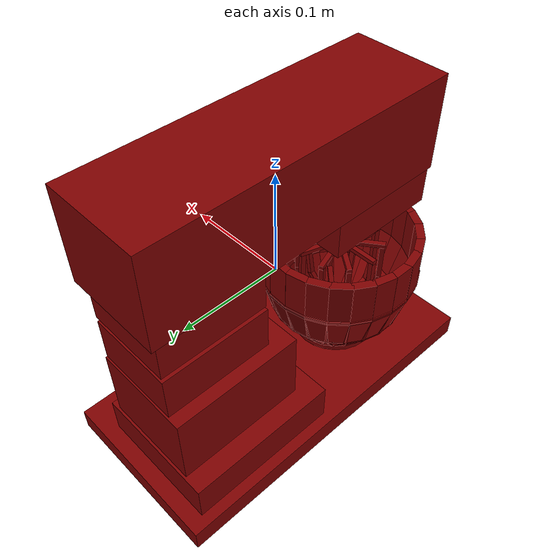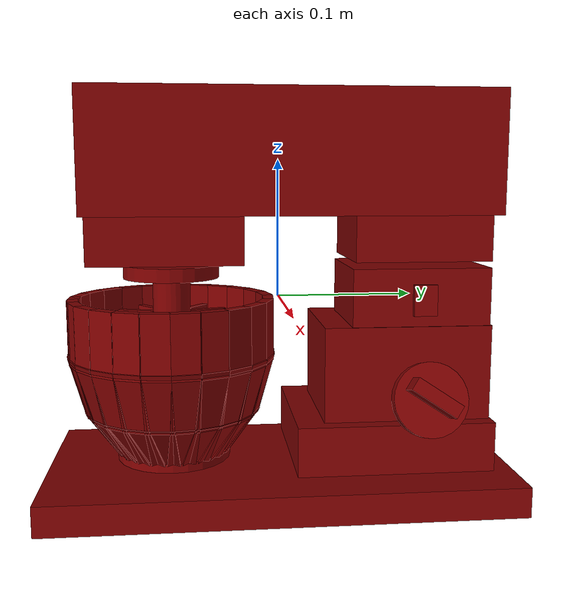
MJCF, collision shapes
<?xml version='1.0' encoding='UTF-8'?>
<mujoco model="model">
  <compiler angle="radian"/>
  <asset>
    <mesh file="visuals/Blender001.obj" name="Blender001_vis"/>
    <mesh file="visuals/Body001.obj" name="Body001_vis"/>
    <mesh file="visuals/Button001.obj" name="Button001_vis"/>
    <mesh file="visuals/Container001.obj" name="Container001_vis"/>
    <mesh file="visuals/Knob001.obj" name="Knob001_vis"/>
    <mesh file="visuals/Lid001.obj" name="Lid001_vis"/>
    <texture file="visuals/T_BC001.png" name="Body001_material" type="2d"/>
    <material name="Body001_material" rgba="1 1 1 1.0" texture="Body001_material" shininess="0.2" specular="0.6"/>
    <texture file="visuals/T_BC001.png" name="Button001_material" type="2d"/>
    <material name="Button001_material" rgba="1 1 1 1.0" texture="Button001_material" shininess="0.5" specular="0.3103448502657381"/>
    <texture file="visuals/T_BC001.png" name="Container001_material" type="2d"/>
    <material name="Container001_material" rgba="1 1 1 1.0" texture="Container001_material" shininess="0.1" specular="4"/>
    <texture file="visuals/T_BC001.png" name="Knob001_material" type="2d"/>
    <material name="Knob001_material" rgba="1 1 1 1.0" texture="Knob001_material" shininess="0.5" specular="0.3103448502657381"/>
    <texture file="visuals/T_BC001.png" name="Lid001_material" type="2d"/>
    <material name="Lid001_material" rgba="1 1 1 1.0" texture="Lid001_material" shininess="0.5" specular="0.3103448502657381"/>
    <texture file="visuals/T_BC001.png" name="Blender001_material" type="2d"/>
    <material name="Blender001_material" rgba="1 1 1 1.0" texture="Blender001_material" shininess="0.1" specular="4"/>
  </asset>
  <default>
    <default class="visual">
      <geom conaffinity="0" contype="0" group="1" type="mesh"/>
    </default>
    <default class="collision">
      <geom group="0" rgba="0.5 0 0 0.5"/>
    </default>
    <default class="spawn">
      <geom group="0" rgba="1 1 1 0.5" contype="0" conaffinity="0"/>
      <site group="0" rgba="1 1 1 0.5"/>
    </default>
    <default class="region">
      <geom group="1" conaffinity="0" contype="0" rgba="0 1 0 0"/>
    </default>
  </default>
  <worldbody>
    <body>
      <body name="object">
        <geom mesh="Body001_vis" type="mesh" solimp="0.998 0.998 0.001" solref="0.001 1" density="100" friction="0.95 0.3 0.1" class="visual" material="Body001_material"/>
        <geom class="collision" type="box" pos="-0.002631 -0.000264 -0.137597" size="0.1709049642086029 0.08239562809467316 0.010993502102792263" quat="0.7071068286895752 0.0 0.0 0.7071067094802856"/>
        <geom class="collision" type="box" pos="-0.015024 0.083063 -0.108414" size="0.07269035279750824 0.059690117835998535 0.018418438732624054" quat="0.7071068286895752 0.0 0.0 0.7071067094802856"/>
        <geom class="collision" type="box" pos="-0.010581 0.092109 -0.054314" size="0.06146044284105301 0.04611232131719589 0.03501715511083603" quat="0.7071068286895752 0.0 0.0 0.7071067094802856"/>
        <geom class="collision" type="box" pos="-0.004484 0.101290 0.001898" size="0.050663091242313385 0.040072131901979446 0.02101229503750801" quat="0.7071068286895752 0.0 0.0 0.7071067094802856"/>
        <body name="Button001">
          <joint axis="-1.0 0.0 0.0" pos="0.040818 0.101718 0.000606" limited="true" name="Button001_joint" range="0.0 0.001" type="slide" damping="1" frictionloss="1" armature=".01" stiffness="0.05"/>
          <geom mesh="Button001_vis" type="mesh" solimp="0.998 0.998 0.001" solref="0.001 1" density="100" friction="0.95 0.3 0.1" class="visual" material="Button001_material"/>
          <geom class="collision" type="box" pos="0.041062 0.101706 0.000800" size="0.008473409339785576 0.001839453587308526 0.011159100569784641" quat="0.7069293260574341 -0.015838947147130966 -0.015838949009776115 0.7069293856620789"/>
        </body>
        <body name="Container001">
          <joint axis="0.0 0.0 1.0" pos="-0.081928 0.000225 -0.061167" limited="true" name="Container001_joint" range="0.0 0.05" type="slide" damping="1" frictionloss="1" armature=".01" stiffness="0.05"/>
          <geom mesh="Container001_vis" type="mesh" solimp="0.998 0.998 0.001" solref="0.001 1" density="100" friction="0.95 0.3 0.1" class="visual" material="Container001_material"/>
          <geom class="collision" type="cylinder" pos="-0.003049 -0.079103 -0.116667" size="0.04229027032852173 0.005284236278384924" quat="0.7071068286895752 0.0 0.0 0.7071067094802856"/>
          <geom class="collision" type="box" pos="-0.003049 -0.150660 -0.023729" size="0.003976119216531515 0.010349423624575138 0.02300979197025299" quat="5.338507946817117e-08 0.7071068286895752 0.7071067094802856 5.338507591545749e-08"/>
          <geom class="collision" type="box" pos="-0.003049 -0.145408 -0.063160" size="0.003976119216531515 0.010349423624575138 0.02300979010760784" quat="0.0975811630487442 -0.7003413438796997 -0.7003412246704102 -0.09758107364177704"/>
          <geom class="collision" type="box" pos="-0.003049 -0.127364 -0.100013" size="0.003976119216531515 0.010349423624575138 0.02300979197025299" quat="0.21898102760314941 -0.6723447442054749 -0.6723445653915405 -0.21898098289966583"/>
          <geom class="collision" type="box" pos="-0.021242 -0.148308 -0.023729" size="0.003976119216531515 0.010349424555897713 0.02300979197025299" quat="5.978750294843849e-08 0.7919096946716309 0.6106382608413696 4.6101927608788174e-08"/>
          <geom class="collision" type="box" pos="-0.019907 -0.143230 -0.063160" size="0.003976119216531515 0.010349423624575138 0.02300979197025299" quat="0.08426856249570847 -0.7843326330184937 -0.6047959327697754 -0.10928399115800858"/>
          <geom class="collision" type="box" pos="-0.015319 -0.125778 -0.100013" size="0.003976119216531515 0.010349424555897713 0.02300979010760784" quat="0.18910621106624603 -0.7529784440994263 -0.580618679523468 -0.24524329602718353"/>
          <geom class="collision" type="box" pos="-0.038698 -0.141147 -0.023729" size="0.003976119216531515 0.010349424555897713 0.02300979197025299" quat="6.534362029242402e-08 0.8655024170875549 0.5009047389030457 3.781724799978292e-08"/>
          <geom class="collision" type="box" pos="-0.036082 -0.136594 -0.063160" size="0.003976119216531515 0.010349422693252563 0.02300979197025299" quat="0.069125235080719 -0.8572213649749756 -0.496112197637558 -0.11943983286619186"/>
          <geom class="collision" type="box" pos="-0.027092 -0.120948 -0.100013" size="0.003976119216531515 0.010349424555897713 0.02300979010760784" quat="0.15512323379516602 -0.8229533433914185 -0.47627967596054077 -0.2680339813232422"/>
          <geom class="collision" type="box" pos="-0.053748 -0.129600 -0.023729" size="0.003976119216531515 0.010349423624575138 0.02300979197025299" quat="6.977980859801391e-08 0.9242616295814514 0.3817597031593323 2.8822062958511196e-08"/>
          <geom class="collision" type="box" pos="-0.050028 -0.125894 -0.063160" size="0.003976119216531515 0.010349423624575138 0.02300979197025299" quat="0.05268316715955734 -0.9154183864593506 -0.3781071603298187 -0.1275486797094345"/>
          <geom class="collision" type="box" pos="-0.037243 -0.113160 -0.100013" size="0.003976119216531515 0.010349423624575138 0.02300979010760784" quat="0.11822569370269775 -0.8788238763809204 -0.36299195885658264 -0.2862308621406555"/>
          <geom class="collision" type="box" pos="-0.064982 -0.114946 -0.023729" size="0.003976118750870228 0.010349423624575138 0.02300979197025299" quat="7.291522763352987e-08 0.9657914638519287 0.2593199610710144 1.9578111576379342e-08"/>
          <geom class="collision" type="box" pos="-0.060437 -0.112315 -0.063160" size="0.003976119216531515 0.010349423624575138 0.02300979197025299" quat="0.03578639775514603 -0.9565508961677551 -0.25683891773223877 -0.13327978551387787"/>
          <geom class="collision" type="box" pos="-0.044819 -0.103277 -0.100013" size="0.003976119682192802 0.010349422693252563 0.02300979010760784" quat="0.08030778914690018 -0.918312132358551 -0.2465713620185852 -0.2990921139717102"/>
          <geom class="collision" type="box" pos="-0.072300 -0.097121 -0.023729" size="0.003976119216531515 0.010349422693252563 0.02300979197025299" quat="7.488726083693109e-08 0.9919118285179138 0.12692882120609283 9.58285539809367e-09"/>
          <geom class="collision" type="box" pos="-0.067218 -0.095799 -0.063160" size="0.003976119216531515 0.010349422693252563 0.023009788244962692" quat="0.017516322433948517 -0.982421338558197 -0.12571431696414948 -0.13688448071479797"/>
          <geom class="collision" type="box" pos="-0.049755 -0.091256 -0.100013" size="0.003976119216531515 0.010349421761929989 0.02300979010760784" quat="-0.03930802270770073 0.9431483149528503 0.12068886309862137 0.3071812391281128"/>
          <geom class="collision" type="box" pos="-0.074604 -0.078611 -0.023729" size="0.003976119216531515 0.010349423624575138 0.02300979197025299" quat="7.523777156848155e-08 -0.9999940991401672 0.0034396154806017876 -7.575713567575804e-08"/>
          <geom class="collision" type="box" pos="-0.069353 -0.078647 -0.063160" size="0.003976119216531515 0.010349423624575138 0.02300979197025299" quat="-0.0004745944170281291 -0.9904263019561768 0.0034066953230649233 -0.13799984753131866"/>
          <geom class="collision" type="box" pos="-0.051309 -0.078771 -0.100013" size="0.003976119216531515 0.010349423624575138 0.02300979010760784" quat="-0.0010650918120518327 -0.950833261013031 0.0032703832257539034 -0.3096841275691986"/>
          <geom class="collision" type="box" pos="-0.071817 -0.059320 -0.023729" size="0.003976119216531515 0.010349424555897713 0.02300979197025299" quat="6.421895193398086e-08 -0.9902077317237854 0.13960184156894684 -8.529826089898052e-08"/>
          <geom class="collision" type="box" pos="-0.066770 -0.060772 -0.063160" size="0.003976119216531515 0.010349424555897713 0.02300979010760784" quat="-0.019265078008174896 -0.9807335138320923 0.1382662057876587 -0.13664931058883667"/>
          <geom class="collision" type="box" pos="-0.049429 -0.065761 -0.100013" size="0.003976119682192802 0.010349423624575138 0.02300979010760784" quat="-0.043232668191194534 -0.9415280222892761 0.13273882865905762 -0.3066534996032715"/>
          <geom class="collision" type="box" pos="-0.064059 -0.041711 -0.023729" size="0.003976119216531515 0.010349424555897713 0.02300979197025299" quat="9.31582420093946e-08 -0.962446391582489 0.2714718282222748 5.2167163033800534e-08"/>
          <geom class="collision" type="box" pos="-0.059582 -0.044455 -0.063160" size="0.003976119216531515 0.010349424555897713 0.02300979197025299" quat="-0.03746318817138672 -0.9532378911972046 0.2688741981983185 -0.13281826674938202"/>
          <geom class="collision" type="box" pos="-0.044197 -0.053885 -0.100013" size="0.003976119216531515 0.010349425487220287 0.02300979197025299" quat="-0.08407089114189148 -0.9151315093040466 0.2581257224082947 -0.2980562448501587"/>
          <geom class="collision" type="box" pos="-0.051992 -0.026902 -0.023729" size="0.003976119216531515 0.010349423624575138 0.02300979197025299" quat="3.926531277897993e-08 -0.9175969362258911 0.3975120782852173 -9.92879733985319e-08"/>
          <geom class="collision" type="box" pos="-0.048400 -0.030733 -0.063160" size="0.003976119216531515 0.010349423624575138 0.02300979197025299" quat="0.054857008159160614 0.9088174700737 -0.3937087655067444 0.12662898004055023"/>
          <geom class="collision" type="box" pos="-0.036058 -0.043897 -0.100013" size="0.003976119216531515 0.010349423624575138 0.02300979010760784" quat="-0.12310383468866348 -0.8724868893623352 0.37796980142593384 -0.28416699171066284"/>
          <geom class="collision" type="box" pos="-0.036263 -0.015722 -0.023729" size="0.003976119216531515 0.010349423624575138 0.02300979197025299" quat="1.0367580927095332e-07 -0.8556152582168579 0.5176123380661011 2.5518522406287047e-08"/>
          <geom class="collision" type="box" pos="-0.033825 -0.020373 -0.063160" size="0.003976119216531515 0.010349422693252563 0.02300979010760784" quat="0.07143085449934006 0.8474288582801819 -0.5126599073410034 0.11807534098625183"/>
          <geom class="collision" type="box" pos="-0.025450 -0.036356 -0.100013" size="0.003976119216531515 0.010349422693252563 0.02300979010760784" quat="0.1602972000837326 0.8135523200035095 -0.49216586351394653 0.2649720311164856"/>
          <geom class="collision" type="box" pos="-0.018132 -0.009155 -0.023729" size="0.003976119216531515 0.010349423624575138 0.02300979197025299" quat="1.1316277692685617e-08 -0.7780683040618896 0.628179669380188 -1.0616876977564971e-07"/>
          <geom class="collision" type="box" pos="-0.017025 -0.014288 -0.063160" size="0.003976119216531515 0.010349421761929989 0.02300979010760784" quat="0.0866890698671341 0.7706241011619568 -0.6221690773963928 0.10737390071153641"/>
          <geom class="collision" type="box" pos="-0.013222 -0.031927 -0.100013" size="0.003976119216531515 0.010349422693252563 0.02300979197025299" quat="0.19453831017017365 0.73981773853302 -0.5972975492477417 0.2409568578004837"/>
          <geom class="collision" type="box" pos="0.001306 -0.007680 -0.023729" size="0.003976119216531515 0.010349423624575138 0.02300979197025299" quat="8.493893943750663e-08 0.6852510571479797 -0.7283069491386414 1.989968190230229e-08"/>
          <geom class="collision" type="box" pos="0.000986 -0.012921 -0.063160" size="0.003976119216531515 0.010349423624575138 0.02300979010760784" quat="0.1005067303776741 0.6786947250366211 -0.7213385701179504 0.09456504136323929"/>
          <geom class="collision" type="box" pos="-0.000112 -0.030932 -0.100013" size="0.003976119216531515 0.010349423624575138 0.02300979010760784" quat="0.22554637491703033 0.6515634655952454 -0.6925024390220642 0.21221278607845306"/>
          <geom class="collision" type="box" pos="0.020694 -0.011601 -0.023729" size="0.003976119682192802 0.010349422693252563 0.02300979197025299" quat="8.687420205433227e-08 0.578004002571106 -0.8160339593887329 7.968111503942055e-09"/>
          <geom class="collision" type="box" pos="0.018952 -0.016555 -0.063160" size="0.003976119216531515 0.010349422693252563 0.02300979010760784" quat="0.11261321604251862 0.5724734663963318 -0.8082264065742493 0.07976493239402771"/>
          <geom class="collision" type="box" pos="0.012964 -0.033577 -0.100013" size="0.003976119216531515 0.010349423624575138 0.02300979010760784" quat="0.2527140974998474 0.5495887398719788 -0.7759168148040771 0.1789996474981308"/>
          <geom class="collision" type="box" pos="0.037909 -0.020429 -0.023729" size="0.003976119216531515 0.010349423624575138 0.02300979197025299" quat="8.71539143076916e-08 0.4623853862285614 -0.8866790533065796 -3.8488536802105955e-09"/>
          <geom class="collision" type="box" pos="0.034904 -0.024735 -0.063160" size="0.003976119216531515 0.010349423624575138 0.023009788244962692" quat="0.12236227095127106 0.4579613208770752 -0.8781954646110535 0.06380952894687653"/>
          <geom class="collision" type="box" pos="0.024575 -0.039531 -0.100013" size="0.003976119216531515 0.010349424555897713 0.02300979010760784" quat="0.27459195256233215 0.4396542012691498 -0.8430888652801514 0.14319434762001038"/>
          <geom class="collision" type="box" pos="0.052022 -0.033415 -0.023729" size="0.003976119216531515 0.010349424555897713 0.02300979197025299" quat="8.585203659094987e-08 0.3393933176994324 -0.9406445622444153 -1.5493380800535306e-08"/>
          <geom class="collision" type="box" pos="0.047981 -0.036768 -0.063160" size="0.003976119216531515 0.010349424555897713 0.02300979010760784" quat="0.1298094391822815 0.33614611625671387 -0.9316446185112 0.04683651030063629"/>
          <geom class="collision" type="box" pos="0.034093 -0.048289 -0.100013" size="0.003976119216531515 0.010349423624575138 0.02300979010760784" quat="0.2913043797016144 0.3227081000804901 -0.8944015502929688 0.10510529577732086"/>
          <geom class="collision" type="box" pos="0.062441 -0.050270 -0.023729" size="0.003976119682192802 0.010349422693252563 0.02300979197025299" quat="6.488117776370927e-08 -0.20588085055351257 0.9785770773887634 5.831853755466909e-08"/>
          <geom class="collision" type="box" pos="0.057635 -0.052386 -0.063160" size="0.003976119216531515 0.010349423624575138 0.02300979197025299" quat="0.13504426181316376 0.20391124486923218 -0.969214141368866 0.028411781415343285"/>
          <geom class="collision" type="box" pos="0.041120 -0.059657 -0.100013" size="0.003976118750870228 0.010349422693252563 0.02300979010760784" quat="0.30305153131484985 0.19575946033000946 -0.9304691553115845 0.06375841051340103"/>
          <geom class="collision" type="box" pos="0.067684 -0.068283 -0.023729" size="0.003976119216531515 0.010349423624575138 0.02300979197025299" quat="7.859486572669994e-08 0.07582245767116547 -0.9971213340759277 -3.7861092039293e-08"/>
          <geom class="collision" type="box" pos="0.062493 -0.069077 -0.063160" size="0.003976119216531515 0.010349423624575138 0.02300979197025299" quat="0.13760340213775635 0.07509711384773254 -0.9875810146331787 0.010463518090546131"/>
          <geom class="collision" type="box" pos="0.044656 -0.071806 -0.100013" size="0.003976119216531515 0.010349424555897713 0.02300979383289814" quat="0.30879443883895874 0.07209460437297821 -0.948101818561554 0.02348109520971775"/>
          <geom class="collision" type="box" pos="0.067990 -0.087686 -0.023729" size="0.003976119216531515 0.010349423624575138 0.02300979197025299" quat="7.989759609472458e-08 0.060082387179136276 0.9981934428215027 7.082539354996698e-08"/>
          <geom class="collision" type="box" pos="0.062777 -0.087056 -0.063160" size="0.003976119216531515 0.010349423624575138 0.02300979197025299" quat="0.13775135576725006 -0.05950760841369629 -0.9886428117752075 -0.008291357196867466"/>
          <geom class="collision" type="box" pos="0.044863 -0.084892 -0.100013" size="0.003976119216531515 0.010349423624575138 0.02300979010760784" quat="0.30912643671035767 -0.05712919309735298 -0.9491211175918579 -0.018606821075081825"/>
          <geom class="collision" type="box" pos="0.063304 -0.105890 -0.023729" size="0.003976119216531515 0.010349424555897713 0.02300979197025299" quat="8.850817323491356e-08 0.19067265093326569 0.9816536903381348 5.971737948584632e-08"/>
          <geom class="collision" type="box" pos="0.058434 -0.103925 -0.063160" size="0.003976119216531515 0.010349424555897713 0.02300979197025299" quat="0.13546887040138245 -0.18884827196598053 -0.972261369228363 -0.026312870904803276"/>
          <geom class="collision" type="box" pos="0.041702 -0.097170 -0.100013" size="0.003976119682192802 0.010349424555897713 0.02300979010760784" quat="0.304004430770874 -0.18129917979240417 -0.9333944320678711 -0.059048671275377274"/>
          <geom class="collision" type="box" pos="0.053969 -0.122337 -0.023729" size="0.003976119216531515 0.010349423624575138 0.02300979197025299" quat="4.7497746180624745e-08 -0.3187215328216553 -0.947848379611969 -9.562340608226805e-08"/>
          <geom class="collision" type="box" pos="0.049785 -0.119165 -0.063160" size="0.003976119216531515 0.010349423624575138 0.02300979010760784" quat="0.13080373406410217 -0.3156718313694 -0.9387795925140381 -0.04398368299007416"/>
          <geom class="collision" type="box" pos="0.035406 -0.108262 -0.100013" size="0.003976119216531515 0.010349424555897713 0.02300979010760784" quat="0.2935352623462677 -0.30305325984954834 -0.9012510180473328 -0.09870366007089615"/>
          <geom class="collision" type="box" pos="0.040021 -0.136245 -0.023729" size="0.003976119216531515 0.010349423624575138 0.02300979197025299" quat="3.38849410752573e-08 -0.44614240527153015 -0.8949620127677917 -1.0125055638354752e-07"/>
          <geom class="collision" type="box" pos="0.036861 -0.132052 -0.063160" size="0.003976119216531515 0.010349424555897713 0.02300979010760784" quat="0.12350531667470932 -0.441873699426651 -0.8863991498947144 -0.0615679994225502"/>
          <geom class="collision" type="box" pos="0.025999 -0.117642 -0.100013" size="0.003976119216531515 0.010349424555897713 0.02300979010760784" quat="0.27715709805488586 -0.42420992255210876 -0.8509644865989685 -0.13816407322883606"/>
          <geom class="collision" type="box" pos="0.023368 -0.145604 -0.023729" size="0.003976119216531515 0.010349423624575138 0.02300979197025299" quat="1.0486750312566073e-07 0.561610221862793 0.8274019360542297 2.0066716288624775e-08"/>
          <geom class="collision" type="box" pos="0.021430 -0.140724 -0.063160" size="0.003976119216531515 0.010349423624575138 0.02300979197025299" quat="0.11418197304010391 -0.5562368035316467 -0.8194854855537415 -0.07750263810157776"/>
          <geom class="collision" type="box" pos="0.014768 -0.123954 -0.100013" size="0.003976119216531515 0.010349423624575138 0.02300979197025299" quat="0.2562347650527954 -0.5340012311935425 -0.786725640296936 -0.17392291128635406"/>
          <geom class="collision" type="box" pos="0.009076 -0.149625 -0.023729" size="0.003976119216531515 0.010349424555897713 0.02300979197025299" quat="9.078947371676804e-09 -0.6444187164306641 -0.7646728157997131 -1.0638343894697755e-07"/>
          <geom class="collision" type="box" pos="0.008186 -0.144450 -0.063160" size="0.003976119216531515 0.010349424555897713 0.02300979383289814" quat="0.10552549362182617 -0.6382529139518738 -0.757356584072113 -0.08893021941184998"/>
          <geom class="collision" type="box" pos="0.005128 -0.126666 -0.100013" size="0.003976119216531515 0.010349422693252563 0.023009788244962692" quat="0.2368084043264389 -0.6127387881278992 -0.7270802855491638 -0.19956757128238678"/>
        </body>
        <body name="Knob001">
          <joint axis="-0.9659258723258972 0.0 -0.2588190734386444" pos="0.065979 0.102640 -0.065149" limited="true" name="Knob001_joint" range="0.0 4.886921905584122" type="hinge" damping="0.05" armature="0.001"/>
          <geom mesh="Knob001_vis" type="mesh" solimp="0.998 0.998 0.001" solref="0.001 1" density="100" friction="0.95 0.3 0.1" class="visual" material="Knob001_material"/>
          <geom class="collision" type="cylinder" pos="0.058930 0.101718 -0.067238" size="0.026722142472863197 0.004501237068325281" quat="0.5609855651855469 0.4304593503475189 0.43045929074287415 0.5609855055809021"/>
          <geom class="collision" type="box" pos="0.074828 0.100364 -0.061364" size="0.008618717081844807 0.005000000353902578 0.018140137195587158" quat="0.8753938674926758 0.46545517444610596 -0.11524780094623566 0.061278343200683594"/>
        </body>
        <body name="Lid001">
          <joint axis="-1.0 0.0 0.0" pos="-0.002824 0.152084 0.024667" limited="true" name="Lid001_joint" range="0.0 1.5707963267948966" type="hinge" damping="1" frictionloss="1" armature=".01" stiffness="0.05"/>
          <geom mesh="Lid001_vis" type="mesh" solimp="0.998 0.998 0.001" solref="0.001 1" density="100" friction="0.95 0.3 0.1" class="visual" material="Lid001_material"/>
          <geom class="collision" type="box" pos="0.000055 0.008418 0.104954" size="0.14756841957569122 0.04622911289334297 0.043764516711235046" quat="0.7071068286895752 0.0 0.0 0.7071067094802856"/>
          <geom class="collision" type="box" pos="-0.002748 -0.081592 0.047609" size="0.05458580702543259 0.04250433295965195 0.020909063518047333" quat="0.7071068286895752 0.0 0.0 0.7071067094802856"/>
          <geom class="collision" type="box" pos="-0.004484 0.102119 0.044452" size="0.049797140061855316 0.040072131901979446 0.01676352322101593" quat="0.7071068286895752 0.0 0.0 0.7071067094802856"/>
          <body name="Blender001">
            <joint axis="0.0 0.0 1.0" pos="-0.003085 -0.079065 -0.035077" limited="false" name="Blender001_joint" range="0 360" type="hinge" damping="1" frictionloss="1" armature=".01" stiffness="0.05"/>
            <geom mesh="Blender001_vis" type="mesh" solimp="0.998 0.998 0.001" solref="0.001 1" density="100" friction="0.95 0.3 0.1" class="visual" material="Blender001_material"/>
            <geom class="collision" type="cylinder" pos="-0.003085 -0.079065 0.019163" size="0.03516204655170441 0.0049544465728104115" quat="0.7071068286895752 0.0 0.0 0.7071067094802856"/>
            <geom class="collision" type="cylinder" pos="-0.003085 -0.079065 -0.001106" size="0.013840957544744015 0.0163100752979517" quat="0.7071068286895752 0.0 0.0 0.7071067094802856"/>
            <geom class="collision" type="box" pos="-0.003085 -0.079065 -0.013399" size="0.00242751301266253 0.041785284876823425 0.0021297161001712084" quat="5.338507946817117e-08 0.7071067690849304 -0.7071068286895752 5.338507591545749e-08"/>
            <geom class="collision" type="box" pos="-0.042098 -0.079065 -0.034019" size="0.00242751301266253 0.0022789735812693834 0.01932363398373127" quat="5.338507591545749e-08 0.7071067690849304 -0.7071068286895752 5.338507591545749e-08"/>
            <geom class="collision" type="box" pos="-0.039962 -0.079065 -0.065561" size="0.00242751301266253 0.002278973814100027 0.013327241875231266" quat="0.060938019305467606 -0.7044759392738342 0.7044762372970581 -0.06093815341591835"/>
            <geom class="collision" type="box" pos="-0.028499 -0.079065 -0.087391" size="0.00242751301266253 0.0022789735812693834 0.013327241875231266" quat="0.28597694635391235 -0.6466971039772034 0.6466971039772034 -0.2859770655632019"/>
            <geom class="collision" type="box" pos="-0.003085 -0.079065 -0.095125" size="0.00242751301266253 0.0022789735812693834 0.017347244545817375" quat="0.5 0.5 -0.5 -0.4999999701976776"/>
            <geom class="collision" type="box" pos="0.035929 -0.079065 -0.034019" size="0.00242751301266253 0.0022789735812693834 0.01932363398373127" quat="2.247644559361106e-08 0.7071067094802856 0.70710688829422 8.429369557916289e-08"/>
            <geom class="collision" type="box" pos="0.033793 -0.079065 -0.065561" size="0.00242751301266253 0.0022789735812693834 0.013327241875231266" quat="0.060938190668821335 -0.704475998878479 -0.7044761776924133 0.06093814969062805"/>
            <geom class="collision" type="box" pos="0.022329 -0.079065 -0.087391" size="0.00242751301266253 0.0022789735812693834 0.013327241875231266" quat="0.28597694635391235 -0.6466969847679138 -0.6466972231864929 0.2859770655632019"/>
            <geom class="collision" type="box" pos="-0.003085 -0.079065 -0.013399" size="0.0024275127798318863 0.041785284876823425 0.0021297161001712084" quat="3.335276232974138e-08 0.892606794834137 -0.45083603262901306 -1.0142711204252919e-07"/>
            <geom class="collision" type="box" pos="-0.034484 -0.102220 -0.034019" size="0.0024275127798318863 0.0022789735812693834 0.01932363398373127" quat="3.335276232974138e-08 0.892606794834137 -0.45083603262901306 -1.0142711204252919e-07"/>
            <geom class="collision" type="box" pos="-0.032765 -0.100952 -0.065561" size="0.0024275127798318863 0.0022789735812693834 0.013327241875231266" quat="0.07692444324493408 -0.8892858624458313 0.4491589665412903 -0.03885294869542122"/>
            <geom class="collision" type="box" pos="-0.023539 -0.094148 -0.087391" size="0.00242751301266253 0.0022789735812693834 0.013327241875231266" quat="0.360999196767807 -0.816349446773529 0.41232016682624817 -0.1823328733444214"/>
            <geom class="collision" type="box" pos="-0.003085 -0.079065 -0.095125" size="0.00242751301266253 0.0022789735812693834 0.017347244545817375" quat="0.6311683058738708 0.6311683654785156 -0.3187892436981201 -0.31878912448883057"/>
            <geom class="collision" type="box" pos="0.028315 -0.055911 -0.034019" size="0.00242751301266253 0.0022789735812693834 0.01932363398373127" quat="1.0142709072624712e-07 -0.45083582401275635 -0.8926069140434265 3.33527587770277e-08"/>
            <geom class="collision" type="box" pos="0.026596 -0.057178 -0.065561" size="0.00242751301266253 0.0022789735812693834 0.013327241875231266" quat="0.03885291516780853 -0.44915854930877686 -0.8892860412597656 0.07692446559667587"/>
            <geom class="collision" type="box" pos="0.017370 -0.063982 -0.087391" size="0.00242751301266253 0.0022789735812693834 0.013327241875231266" quat="0.18233270943164825 -0.41231992840766907 -0.8163495063781738 0.3609994053840637"/>
            <geom class="collision" type="box" pos="-0.003085 -0.079065 -0.013399" size="0.0024275127798318863 0.04178528115153313 0.0021297161001712084" quat="6.296491505963786e-08 0.988060712814331 -0.1540650725364685 -8.622809843927826e-08"/>
            <geom class="collision" type="box" pos="-0.014962 -0.116227 -0.034019" size="0.0024275127798318863 0.002278973814100027 0.01932363398373127" quat="6.296491505963786e-08 0.988060712814331 -0.1540650725364685 -8.622809843927826e-08"/>
            <geom class="collision" type="box" pos="-0.014312 -0.114192 -0.065561" size="0.00242751301266253 0.0022789735812693834 0.013327241875231266" quat="0.08515052497386932 -0.9843846559524536 0.15349255502223969 -0.01327737607061863"/>
            <geom class="collision" type="box" pos="-0.010822 -0.103273 -0.087391" size="0.0024275132454931736 0.0022789735812693834 0.01332724280655384" quat="0.39960402250289917 -0.9036484956741333 0.14090290665626526 -0.06230898201465607"/>
            <geom class="collision" type="box" pos="-0.003085 -0.079065 -0.095125" size="0.00242751301266253 0.0022789735812693834 0.017347244545817375" quat="0.6986643671989441 0.6986644864082336 -0.1089404746890068 -0.1089404821395874"/>
            <geom class="collision" type="box" pos="0.008793 -0.041904 -0.034019" size="0.00242751301266253 0.0022789735812693834 0.01932363398373127" quat="6.2964957692202e-08 -0.15406456589698792 -0.9880607724189758 -8.622809843927826e-08"/>
            <geom class="collision" type="box" pos="0.008143 -0.043938 -0.065561" size="0.00242751301266253 0.0022789733484387398 0.013327241875231266" quat="0.013277257792651653 -0.1534910798072815 -0.9843848943710327 0.0851505920290947"/>
            <geom class="collision" type="box" pos="0.004653 -0.054858 -0.087391" size="0.00242751301266253 0.0022789735812693834 0.01332724280655384" quat="-0.06230871006846428 0.1409025490283966 0.9036484956741333 -0.3996042013168335"/>
            <geom class="collision" type="box" pos="-0.003085 -0.079065 -0.013399" size="0.00242751301266253 0.04178529232740402 0.0021297161001712084" quat="8.158167474903166e-08 -0.9867917895317078 -0.161993607878685 -3.090388744908523e-08"/>
            <geom class="collision" type="box" pos="0.009388 -0.116031 -0.034019" size="0.00242751301266253 0.0022789733484387398 0.01932363398373127" quat="8.158167474903166e-08 -0.9867917895317078 -0.161993607878685 -3.090388744908523e-08"/>
            <geom class="collision" type="box" pos="0.008706 -0.114008 -0.065561" size="0.00242751301266253 0.0022789733484387398 0.013327241875231266" quat="0.08504132181406021 -0.9831205606460571 -0.16139091551303864 0.013960489071905613"/>
            <geom class="collision" type="box" pos="0.005041 -0.103145 -0.087391" size="0.00242751301266253 0.0022789735812693834 0.013327240943908691" quat="0.3990907371044159 -0.9024880528450012 -0.14815406501293182 0.06551548093557358"/>
            <geom class="collision" type="box" pos="-0.003085 -0.079065 -0.095125" size="0.00242751301266253 0.0022789735812693834 0.017347242683172226" quat="0.6977669596672058 0.6977673768997192 0.11454688012599945 0.1145467534661293"/>
            <geom class="collision" type="box" pos="-0.015557 -0.042099 -0.034019" size="0.0024275127798318863 0.0022789735812693834 0.01932363398373127" quat="7.450070427239552e-08 0.1619938164949417 -0.9867917895317078 1.2230194634810232e-08"/>
            <geom class="collision" type="box" pos="-0.014875 -0.044123 -0.065561" size="0.0024275127798318863 0.0022789733484387398 0.013327241875231266" quat="-0.013960476964712143 0.16139112412929535 -0.9831205606460571 0.08504127711057663"/>
            <geom class="collision" type="box" pos="-0.011210 -0.054985 -0.087391" size="0.00242751301266253 0.002278973814100027 0.013327241875231266" quat="-0.06551560759544373 0.14815455675125122 -0.9024879336357117 0.39909082651138306"/>
            <geom class="collision" type="box" pos="-0.003085 -0.079065 -0.013399" size="0.00242751301266253 0.041785288602113724 0.0021297161001712084" quat="4.73688643864989e-08 0.8906610012054443 0.4546680152416229 7.325850504003029e-08"/>
            <geom class="collision" type="box" pos="0.028513 -0.101949 -0.034019" size="0.00242751301266253 0.0022789735812693834 0.01932363398373127" quat="4.736886083378522e-08 0.8906610012054443 0.4546680152416229 7.325851214545764e-08"/>
            <geom class="collision" type="box" pos="0.026783 -0.100696 -0.065561" size="0.00242751301266253 0.0022789733484387398 0.013327241875231266" quat="0.0767567828297615 -0.8873472809791565 -0.45297664403915405 0.039183128625154495"/>
            <geom class="collision" type="box" pos="0.017499 -0.093972 -0.087391" size="0.00242751301266253 0.0022789735812693834 0.013327241875231266" quat="0.36021238565444946 -0.8145697712898254 -0.415824830532074 0.18388263881206512"/>
            <geom class="collision" type="box" pos="-0.003085 -0.079065 -0.095125" size="0.00242751301266253 0.0022789735812693834 0.017347242683172226" quat="0.6297923922538757 0.6297923922538757 0.32149893045425415 0.32149893045425415"/>
            <geom class="collision" type="box" pos="-0.034682 -0.056182 -0.034019" size="0.00242751301266253 0.002278973814100027 0.01932363398373127" quat="6.724301471194849e-08 0.45466870069503784 -0.8906606435775757 3.432652206925013e-08"/>
            <geom class="collision" type="box" pos="-0.032952 -0.057434 -0.065561" size="0.00242751301266253 0.0022789733484387398 0.013327241875231266" quat="0.039183225482702255 -0.45297691226005554 0.8873471617698669 -0.07675677537918091"/>
            <geom class="collision" type="box" pos="-0.023668 -0.064159 -0.087391" size="0.00242751301266253 0.0022789735812693834 0.013327241875231266" quat="0.1838826835155487 -0.4158251881599426 0.8145696520805359 -0.3602122366428375"/>
          </body>
        </body>
        <geom class="region" name="reg_main" type="box" pos="-0.0028245000000000006 0.0 0.0" size="0.08090549999999999 0.165532 0.147602"/>
      </body>
    </body>
  </worldbody>
  <actuator>
    <motor name="Button001_joint_actuator" joint="Button001_joint" gear="0.5"/>
    <motor name="Container001_joint_actuator" joint="Container001_joint" gear="10"/>
    <motor name="Knob001_joint_actuator" joint="Knob001_joint" gear="10"/>
    <motor name="Lid001_joint_actuator" joint="Lid001_joint" gear="10"/>
    <motor name="Blender001_joint_actuator" joint="Blender001_joint" gear="10"/>
  </actuator>
</mujoco>
